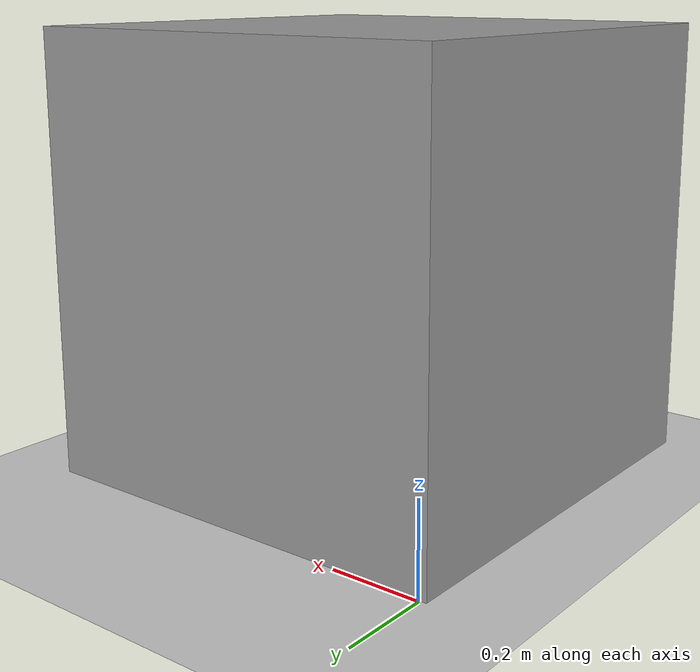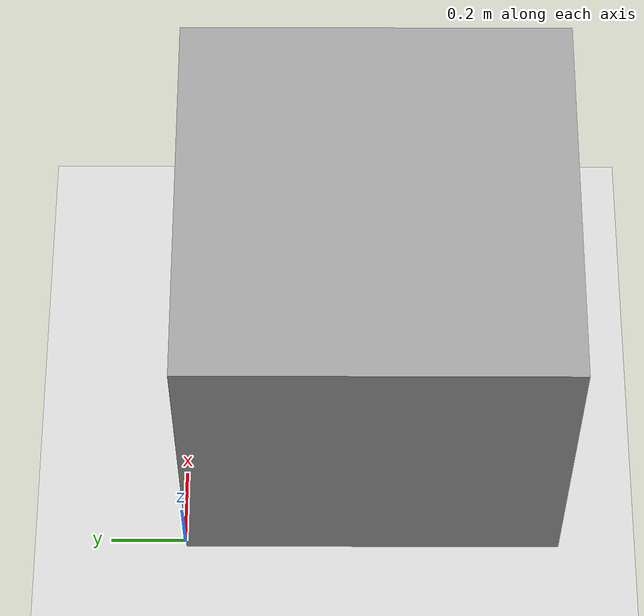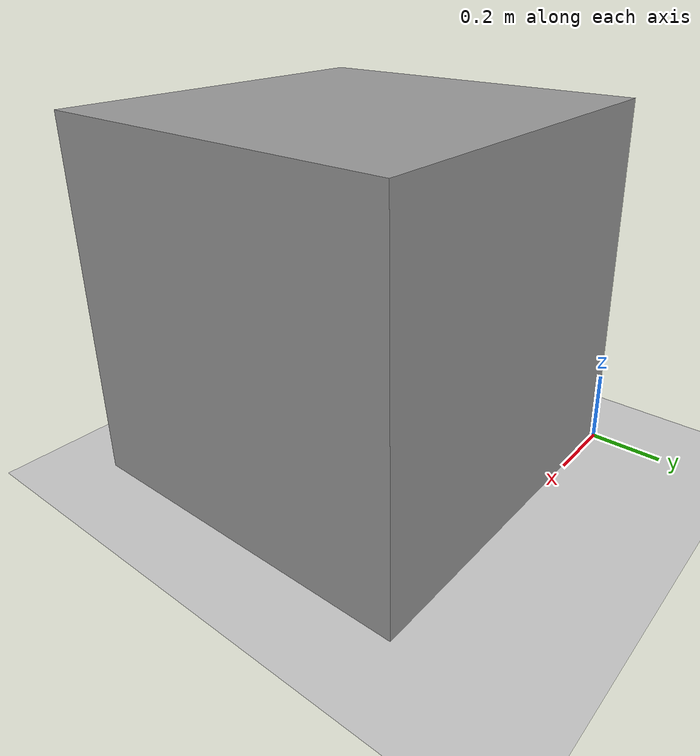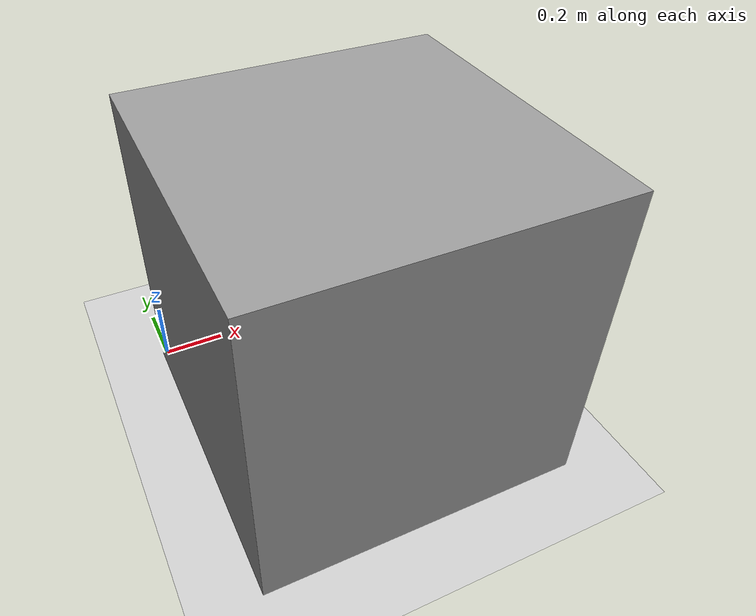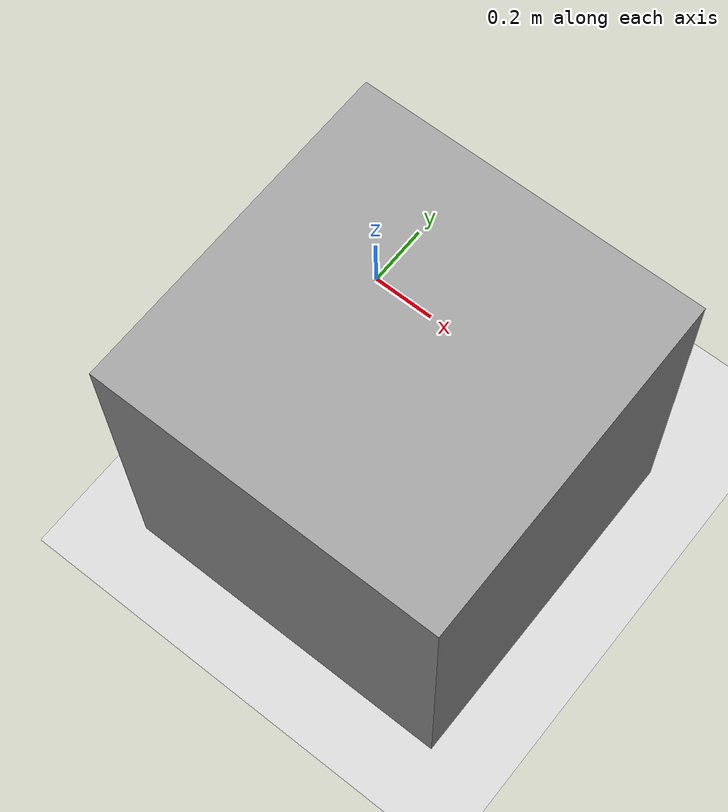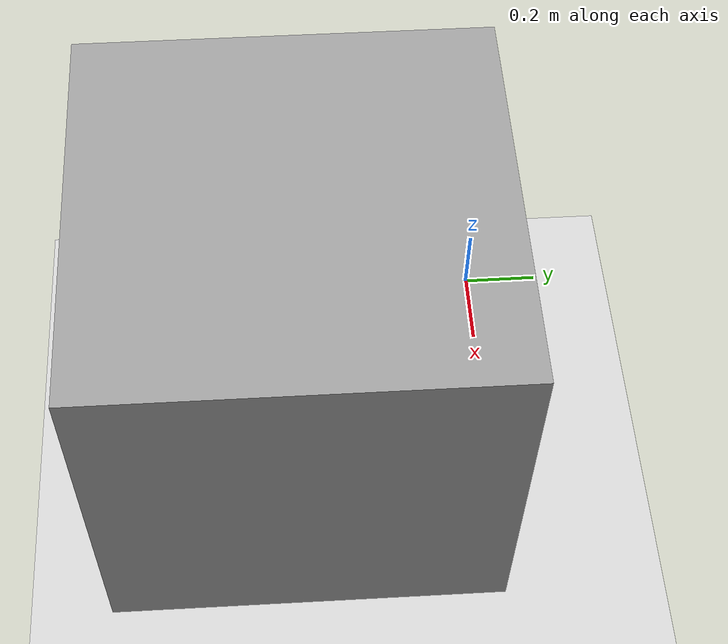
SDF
<sdf version="1.7">
 <world name="default">
  <light name="sun" type="directional">
   <pose>0 0 10 0 -0 0</pose>
   <diffuse>0.8 0.8 0.8 1</diffuse>
   <specular>0.2 0.2 0.2 1</specular>
   <attenuation>
    <range>1000</range>
    <constant>0.9</constant>
    <linear>0.01</linear>
    <quadratic>0.001</quadratic>
   </attenuation>
   <direction>-0.5 0.1 -0.9</direction>
   <spot><inner_angle>0</inner_angle><outer_angle>0</outer_angle><falloff>0</falloff></spot>
  </light>
  <model name="ground_plane">
   <static>true</static>
   <link name="link">
    <collision name="collision"><geometry><plane><normal>0 0 1</normal></plane></geometry></collision>
    <visual name="visual">
     <geometry><plane><normal>0 0 1</normal><size>100 100</size></plane></geometry>
     <surface><contact><collide_bitmask>0x01</collide_bitmask></contact></surface>
     <material>
      <ambient>0.8 0.8 0.8 1</ambient>
      <diffuse>0.8 0.8 0.8 1</diffuse>
      <specular>0.8 0.8 0.8 1</specular>
     </material>
    </visual>
   </link>
  </model>
  <gravity>0 0 -9.8</gravity>
  <magnetic_field>6e-06 2.3e-05 -4.2e-05</magnetic_field>
  <atmosphere type="adiabatic"/>
  <physics type="ode">
   <max_step_size>0.001</max_step_size>
   <real_time_factor>1</real_time_factor>
   <real_time_update_rate>1000</real_time_update_rate>
  </physics>
  <scene><ambient>0.4 0.4 0.4 1</ambient><background>0.7 0.7 0.7 1</background><shadows>1</shadows></scene>
  <audio><device>default</device></audio>
  <spherical_coordinates>
   <surface_model>EARTH_WGS84</surface_model>
   <latitude_deg>0</latitude_deg>
   <longitude_deg>0</longitude_deg>
   <elevation>0</elevation>
   <heading_deg>0</heading_deg>
  </spherical_coordinates>
  <model name="unit_box1">
   <pose>0.484475 -0.503735 0.5 0 -0 0</pose>
   <link name="link">
    <inertial>
     <mass>1</mass>
     <inertia>
      <ixx>0.166667</ixx>
      <ixy>0</ixy>
      <ixz>0</ixz>
      <iyy>0.166667</iyy>
      <iyz>0</iyz>
      <izz>0.166667</izz>
     </inertia>
    </inertial>
    <collision name="collision"><geometry><box><size>1 1 0.999993</size></box></geometry></collision>
    <visual name="visual">
     <geometry><box><size>1 1 0.999993</size></box></geometry>
     <material>
      <script><name>Gazebo/Grey</name><uri>file://media/materials/scripts/gazebo.material</uri></script>
     </material>
    </visual>
   </link>
  </model>
 </world>
</sdf>
